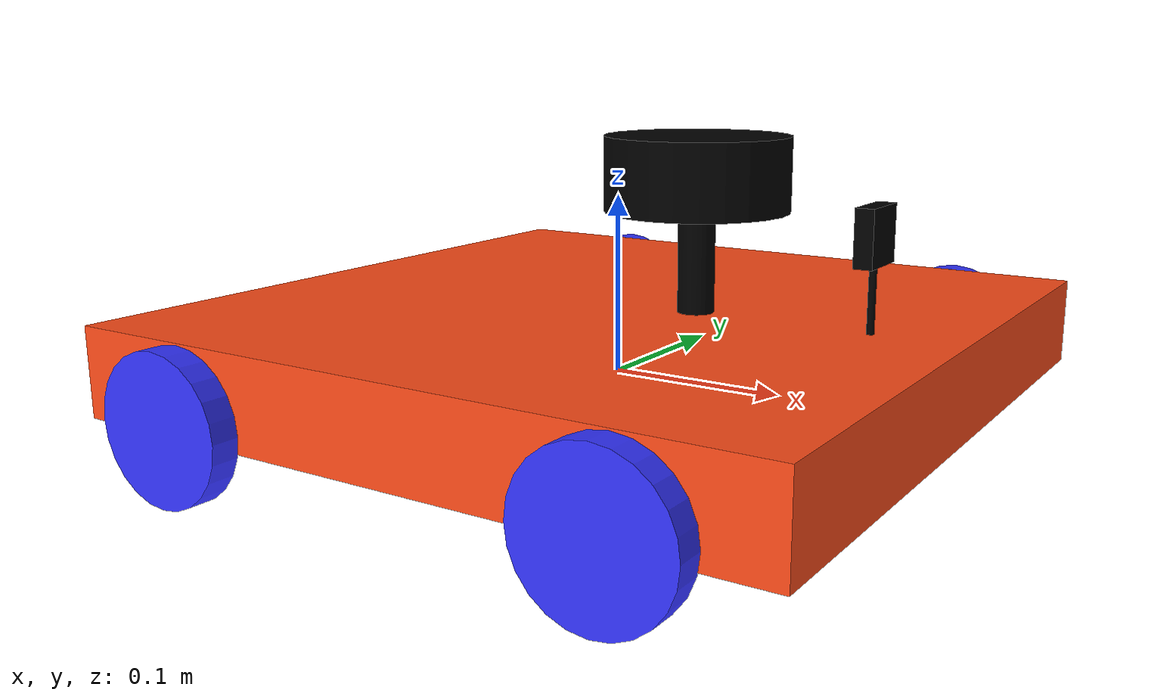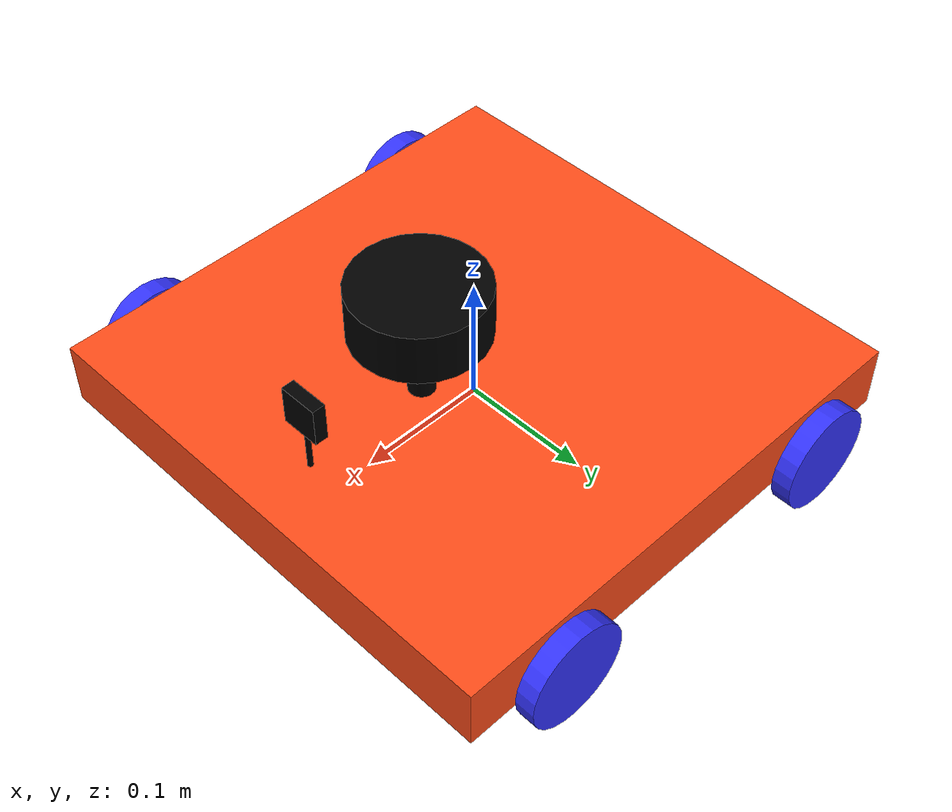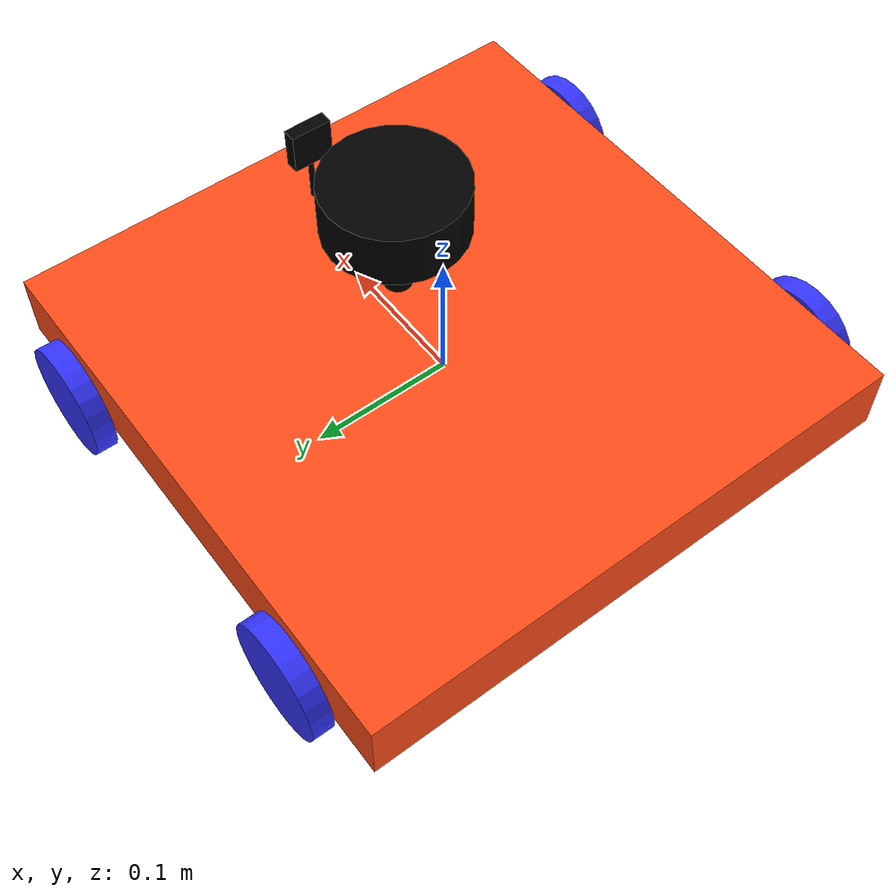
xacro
<?xml version="1.0"?>
<robot xmlns:xacro="http://www.ros.org/wiki/xacro"  name="robot">

    <xacro:arg name="use_ros2_control" default="true"/>
    <xacro:arg name="sim_mode" default="false"/>

    <xacro:include filename="robot_core.xacro" />

    <xacro:include filename="gazebo_control.xacro" />
    <xacro:include filename="lidar.xacro" />
    <xacro:include filename="camera.xacro" />
    <xacro:include filename="imu.xacro" />

</robot>

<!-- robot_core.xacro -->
<robot xmlns:xacro="http://www.ros.org/wiki/xacro" >

    <xacro:include filename="inertial_macros.xacro"/>

    <xacro:property name="chassis_length" value="0.4"/>
    <xacro:property name="chassis_width" value="0.4"/>
    <xacro:property name="chassis_height" value="0.05"/>
    <xacro:property name="chassis_mass" value="1.500"/>
    <xacro:property name="wheel_radius" value="0.04"/>
    <xacro:property name="wheel_thickness" value="0.015"/>
    <xacro:property name="wheel_mass" value="0.150"/>
    <xacro:property name="wheel_offset_x" value="0.2"/>
    <xacro:property name="wheel_offset_y" value="0.21"/>
    <xacro:property name="wheel_offset_z" value="0.01"/>

    <material name="white">
        <color rgba="1 1 1 1" />
    </material>

    <material name="orange">
        <color rgba="1 0.3 0.1 1"/>
    </material>

    <material name="blue">
        <color rgba="0.2 0.2 1 1"/>
    </material>

    <material name="black">
        <color rgba="0 0 0 1"/>
    </material>

    <material name="red">
        <color rgba="1 0 0 1"/>
    </material>

    <!-- BASE LINK -->

    <link name="base_link">

    </link>

    <!-- BASE_FOOTPRINT LINK -->

    <joint name="base_footprint_joint" type="fixed">
        <parent link="base_link"/>
        <child link="base_footprint"/>
        <origin xyz="0 0 0" rpy="0 0 0"/>
    </joint>

    <link name="base_footprint">
    </link>

    <!-- CHASSIS LINK -->

    <joint name="chassis_joint" type="fixed">
        <parent link="base_link"/>
        <child link="chassis"/>
        <origin xyz="${-wheel_offset_x} 0 ${-wheel_offset_z}"/>
    </joint>

    <link name="chassis">
        <visual>
            <origin xyz="${chassis_length/2} 0 ${chassis_height/2}"/>
            <geometry>
                <box size="${chassis_length} ${chassis_width} ${chassis_height}"/>
            </geometry>
            <material name="orange"/>
        </visual>
        <collision>
            <origin xyz="${chassis_length/2} 0 ${chassis_height/2}"/>
            <geometry>
                <box size="${chassis_length} ${chassis_width} ${chassis_height}"/>
            </geometry>
        </collision>
        <xacro:inertial_box mass="0.5" x="${chassis_length}" y="${chassis_width}" z="${chassis_height}">
            <origin xyz="${chassis_length/2} 0 ${chassis_height/2}" rpy="0 0 0"/>
        </xacro:inertial_box>
    </link>

    <gazebo reference="chassis">
        <material>Gazebo/Orange</material>
    </gazebo>

    <!-- FRONT LEFT WHEEL LINK -->

    <joint name="front_left_wheel_joint" type="continuous">
        <parent link="base_link"/>
        <child link="front_left_wheel"/>
        <origin xyz="${(wheel_offset_x/2) + (wheel_offset_x/8)} ${wheel_offset_y} 0" rpy="-${pi/2} 0 0" />
        <axis xyz="0 0 1"/>
    </joint>

    <link name="front_left_wheel">
        <visual>
            <geometry>
                <cylinder radius="${wheel_radius}" length="${wheel_thickness}"/>
            </geometry>
            <material name="blue"/>
        </visual>
        <collision>
            <geometry>
                <sphere radius="${wheel_radius}"/>
            </geometry>
        </collision>
        <xacro:inertial_cylinder mass="${wheel_mass}" length="${wheel_thickness}" radius="${wheel_radius}">
            <origin xyz="0 0 0" rpy="0 0 0"/>
        </xacro:inertial_cylinder>
    </link>

    <gazebo reference="front_left_wheel">
        <material>Gazebo/Blue</material>
    </gazebo>

    <!-- FRONT RIGHT WHEEL LINK -->

    <joint name="front_right_wheel_joint" type="continuous">
        <parent link="base_link"/>
        <child link="front_right_wheel"/>
        <origin xyz="${(wheel_offset_x/2) + (wheel_offset_x/8)} ${-wheel_offset_y} 0" rpy="${pi/2} 0 0" />
        <axis xyz="0 0 -1"/>
    </joint>

    <link name="front_right_wheel">
        <visual>
            <geometry>
                <cylinder radius="${wheel_radius}" length="${wheel_thickness}"/>
            </geometry>
            <material name="blue"/>
        </visual>
        <collision>
            <geometry>
                <sphere radius="${wheel_radius}"/>
            </geometry>
        </collision>
        <xacro:inertial_cylinder mass="${wheel_mass}" length="${wheel_thickness}" radius="${wheel_radius}">
            <origin xyz="0 0 0" rpy="0 0 0"/>
        </xacro:inertial_cylinder>
    </link>

    <gazebo reference="front_right_wheel">
        <material>Gazebo/Blue</material>
    </gazebo>

    <!-- REAR LEFT WHEEL LINK -->

    <joint name="rear_left_wheel_joint" type="continuous">
        <parent link="base_link"/>
        <child link="rear_left_wheel"/>
        <origin xyz="-${(wheel_offset_x/2) + (wheel_offset_x/8)} ${wheel_offset_y} 0" rpy="-${pi/2} 0 0" />
        <axis xyz="0 0 1"/>
    </joint>

    <link name="rear_left_wheel">
        <visual>
            <geometry>
                <cylinder radius="${wheel_radius}" length="${wheel_thickness}"/>
            </geometry>
            <material name="blue"/>
        </visual>
        <collision>
            <geometry>
                <sphere radius="${wheel_radius}"/>
            </geometry>
        </collision>
        <xacro:inertial_cylinder mass="${wheel_mass}" length="${wheel_thickness}" radius="${wheel_radius}">
            <origin xyz="0 0 0" rpy="0 0 0"/>
        </xacro:inertial_cylinder>
    </link>

    <gazebo reference="rear_left_wheel">
        <material>Gazebo/Blue</material>
    </gazebo>

    <!-- REAR RIGHT WHEEL LINK -->

    <joint name="rear_right_wheel_joint" type="continuous">
        <parent link="base_link"/>
        <child link="rear_right_wheel"/>
        <origin xyz="-${(wheel_offset_x/2) + (wheel_offset_x/8)} ${-wheel_offset_y} 0" rpy="${pi/2} 0 0" />
        <axis xyz="0 0 -1"/>
    </joint>

    <link name="rear_right_wheel">
        <visual>
            <geometry>
                <cylinder radius="${wheel_radius}" length="${wheel_thickness}"/>
            </geometry>
            <material name="blue"/>
        </visual>
        <collision>
            <geometry>
                <sphere radius="${wheel_radius}"/>
            </geometry>
        </collision>
        <xacro:inertial_cylinder mass="${wheel_mass}" length="${wheel_thickness}" radius="${wheel_radius}">
            <origin xyz="0 0 0" rpy="0 0 0"/>
        </xacro:inertial_cylinder>
    </link>

    <gazebo reference="rear_right_wheel">
        <material>Gazebo/Blue</material>
    </gazebo>

</robot>

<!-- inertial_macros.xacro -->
<robot xmlns:xacro="http://www.ros.org/wiki/xacro" >

    <xacro:macro name="inertial_sphere" params="mass radius *origin">
        <inertial>
            <xacro:insert_block name="origin"/>
            <mass value="${mass}" />
            <inertia ixx="${(2/5) * mass * (radius*radius)}" ixy="0.0" ixz="0.0"
                    iyy="${(2/5) * mass * (radius*radius)}" iyz="0.0"
                    izz="${(2/5) * mass * (radius*radius)}" />
        </inertial>
    </xacro:macro>

    <xacro:macro name="inertial_box" params="mass x y z *origin">
        <inertial>
            <xacro:insert_block name="origin"/>
            <mass value="${mass}" />
            <inertia ixx="${(1/12) * mass * (y*y+z*z)}" ixy="0.0" ixz="0.0"
                    iyy="${(1/12) * mass * (x*x+z*z)}" iyz="0.0"
                    izz="${(1/12) * mass * (x*x+y*y)}" />
        </inertial>
    </xacro:macro>

    <xacro:macro name="inertial_cylinder" params="mass length radius *origin">
        <inertial>
            <xacro:insert_block name="origin"/>
            <mass value="${mass}" />
            <inertia ixx="${(1/12) * mass * (3*radius*radius + length*length)}" ixy="0.0" ixz="0.0"
                    iyy="${(1/12) * mass * (3*radius*radius + length*length)}" iyz="0.0"
                    izz="${(1/2) * mass * (radius*radius)}" />
        </inertial>
    </xacro:macro>

</robot>

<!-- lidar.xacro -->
<robot xmlns:xacro="http://www.ros.org/wiki/xacro" >

    <joint name="laser_joint" type="fixed">
        <parent link="chassis"/>
        <child link="laser_frame"/>
        <origin xyz="0.25 0 0.125" rpy="0 0 0"/>
    </joint>

    <link name="laser_frame">
        <visual>
            <geometry>
                <cylinder radius="0.05" length="0.04"/>
            </geometry>
            <material name="black"/>
        </visual>
        <visual>
            <origin xyz="0 0 -0.05"/>
            <geometry>
                <cylinder radius="0.01" length="0.1"/>
            </geometry>
            <material name="black"/>
        </visual>
        <collision>
            <geometry>
                <cylinder radius="0.05" length="0.04"/>
            </geometry>
        </collision>
        <xacro:inertial_cylinder mass="0.1" length="0.04" radius="0.05">
            <origin xyz="0 0 0" rpy="0 0 0"/>
        </xacro:inertial_cylinder>
    </link>

    <gazebo reference="laser_frame">
        <material>Gazebo/Black</material>

        <sensor name="laser" type="ray">
            <pose> 0 0 0 0 0 0 </pose>
            <visualize>true</visualize>
            <update_rate>10</update_rate>
            <ray>
                <scan>
                    <horizontal>
                        <samples>360</samples>
                        <min_angle>-3.14</min_angle>
                        <max_angle>3.14</max_angle>
                    </horizontal>
                </scan>
                <range>
                    <min>0.3</min>
                    <max>12</max>
                </range>
            </ray>
            <plugin name="laser_controller" filename="libgazebo_ros_ray_sensor.so">
                <ros>
                    <argument>~/out:=scan</argument>
                </ros>
                <output_type>sensor_msgs/LaserScan</output_type>
                <frame_name>laser_frame</frame_name>
            </plugin>
        </sensor>
    </gazebo>

</robot>

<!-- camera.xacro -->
<robot xmlns:xacro="http://www.ros.org/wiki/xacro" >

    <joint name="camera_joint" type="fixed">
        <parent link="chassis"/>
        <child link="camera_link"/>
        <origin xyz="0.35 0 0.1" rpy="0 0 0"/>
    </joint>

    <link name="camera_link">
        <visual>
            <geometry>
                <box size="0.010 0.03 0.03"/>
            </geometry>
            <material name="black"/>
        </visual>
        <visual>
            <origin xyz="0 0 -0.05"/>
            <geometry>
                <cylinder radius="0.002" length="0.1"/>
            </geometry>
            <material name="black"/>
        </visual>
    </link>

    <joint name="camera_optical_joint" type="fixed">
        <parent link="camera_link"/>
        <child link="camera_link_optical"/>
        <origin xyz="0 0 0" rpy="${-pi/2} 0 ${-pi/2}"/>
    </joint>

    <link name="camera_link_optical"></link>

    <gazebo reference="camera_link">
        <material>Gazebo/Black</material>

        <sensor name="camera" type="camera">
            <pose> 0 0 0 0 0 0 </pose>
            <visualize>true</visualize>
            <update_rate>10</update_rate>
            <camera>
                <horizontal_fov>1.089</horizontal_fov>
                <image>
                    <format>R8G8B8</format>
                    <width>640</width>
                    <height>480</height>
                </image>
                <clip>
                    <near>0.05</near>
                    <far>8.0</far>
                </clip>
            </camera>
            <plugin name="camera_controller" filename="libgazebo_ros_camera.so">
                <frame_name>camera_link_optical</frame_name>
            </plugin>
        </sensor>
    </gazebo>

</robot>

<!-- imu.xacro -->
<robot xmlns:xacro="http://www.ros.org/wiki/xacro" >

    <joint name="imu_joint" type="fixed">
        <parent link="chassis"/>
        <child link="imu_link"/>
        <origin xyz="0 0 0" rpy="0 0 0"/>
    </joint>

    <link name="imu_link" />

    <gazebo reference="imu_link">
        <gravity>true</gravity>
        <sensor name="amr_imu_sensor" type="imu">
        <always_on>true</always_on>
        <update_rate>100</update_rate>
        <visualize>true</visualize>
        <topic>__default_topic__</topic>
        <plugin filename="libgazebo_ros_imu_sensor.so" name="imu_plugin">
            <ros>
                <remapping>~/out:=/imu/data</remapping>
            </ros>
            <bodyName>imu_link</bodyName>
            <updateRateHZ>10.0</updateRateHZ>
            <gaussianNoise>0.0</gaussianNoise>
            <xyzOffset>0 0 0</xyzOffset>
            <rpyOffset>0 0 0</rpyOffset>
            <frameName>imu_link</frameName>
            <initial_orientation_as_reference>false</initial_orientation_as_reference>
        </plugin>
        <pose>0 0 0 0 0 0</pose>
        </sensor>
    </gazebo>

</robot>
